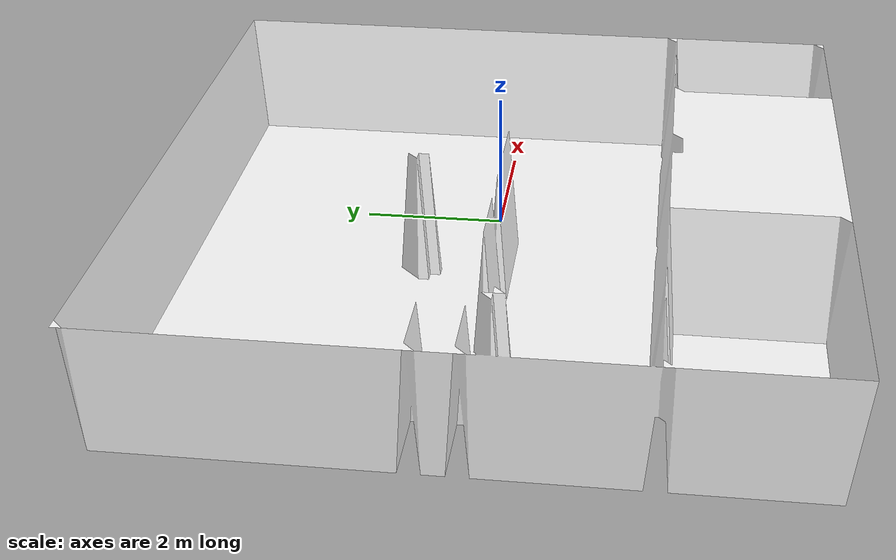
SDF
<?xml version="1.0" ?>
<sdf version="1.6">
  <model name="walls2">
    <pose frame="">0 0 1 0 3.14 0</pose>
    <static>1</static>
    <self_collide>1</self_collide>
    <allow_auto_disable>1</allow_auto_disable>
    <link name="mesh">
      <kinematic>0</kinematic>
      <gravity>1</gravity>
      <self_collide>0</self_collide>
      <collision name="collision">
        <geometry>
          <mesh>
            <uri>model://random_maps/stuff.stl</uri>
            <scale>1 1 1</scale>
          </mesh>
        </geometry>
        <pose frame="">0 0 0 0 -0 0</pose>
        <max_contacts>0</max_contacts>
      </collision>
      <visual name="visual">
        <geometry>
          <mesh>
            <uri>model://random_maps/stuff.stl</uri>
            <scale>1 1 1</scale>
          </mesh>
        </geometry>
        <material>
          <ambient>1 1 1 1</ambient>
          <diffuse>1 1 1 1</diffuse>
        </material>
        <pose frame="">0 0 0 0 -0 0</pose>
        <cast_shadows>1</cast_shadows>
        <transparency>0.0</transparency>
      </visual>
      <pose frame="">0 0 0 0 -0 0</pose>
    </link>
  </model>
</sdf>
